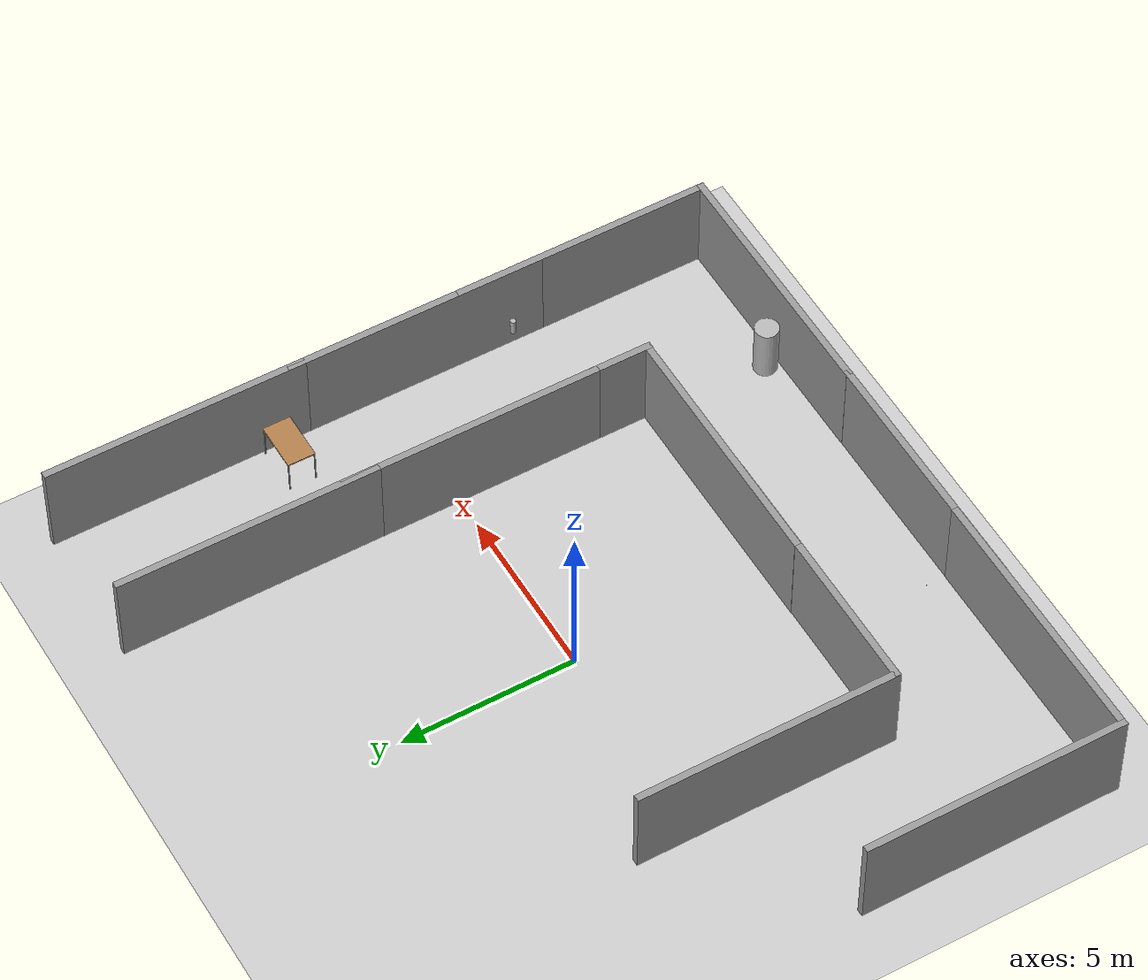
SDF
<sdf version="1.6">
 <world name="default">
  <light name="sun" type="directional">
   <pose>0 0 10 0 -0 0</pose>
   <diffuse>0.8 0.8 0.8 1</diffuse>
   <specular>0.1 0.1 0.1 1</specular>
   <attenuation>
    <range>1000</range>
    <constant>0.9</constant>
    <linear>0.01</linear>
    <quadratic>0.001</quadratic>
   </attenuation>
   <direction>-0.5 0.5 -1</direction>
  </light>
  <model name="ground_plane">
   <static>1</static>
   <link name="link">
    <collision name="collision">
     <geometry><plane><normal>0 0 1</normal><size>100 100</size></plane></geometry>
     <surface><friction><ode><mu>100</mu><mu2>50</mu2></ode></friction></surface>
    </collision>
    <visual name="visual">
     <cast_shadows>0</cast_shadows>
     <geometry><plane><normal>0 0 1</normal><size>100 100</size></plane></geometry>
     <material>
      <script><uri>file://media/materials/scripts/gazebo.material</uri><name>Gazebo/Grey</name></script>
     </material>
    </visual>
   </link>
  </model>
  <gravity>0 0 -9.8</gravity>
  <magnetic_field>6e-06 2.3e-05 -4.2e-05</magnetic_field>
  <atmosphere type="adiabatic"/>
  <physics name="default_physics" default="0" type="ode">
   <max_step_size>0.001</max_step_size>
   <real_time_factor>1</real_time_factor>
   <real_time_update_rate>1000</real_time_update_rate>
  </physics>
  <scene><ambient>0.4 0.4 0.4 1</ambient><background>0.7 0.7 0.7 1</background><shadows>1</shadows></scene>
  <spherical_coordinates>
   <surface_model>EARTH_WGS84</surface_model>
   <latitude_deg>0</latitude_deg>
   <longitude_deg>0</longitude_deg>
   <elevation>0</elevation>
   <heading_deg>0</heading_deg>
  </spherical_coordinates>
  <model name="grey_wall">
   <static>1</static>
   <link name="link">
    <pose>0 0 1.4 0 -0 0</pose>
    <collision name="collision"><geometry><box><size>7.5 0.2 2.8</size></box></geometry></collision>
    <visual name="visual">
     <cast_shadows>0</cast_shadows>
     <geometry><box><size>7.5 0.2 2.8</size></box></geometry>
     <material>
      <script>
       <uri>model://grey_wall/materials/scripts</uri>
       <uri>model://grey_wall/materials/textures</uri>
       <name>vrc/grey_wall</name>
      </script>
     </material>
    </visual>
   </link>
   <pose>10 6 0 0 0 -1.5708</pose>
  </model>
  <model name="grey_wall_clone">
   <static>1</static>
   <link name="link">
    <pose>0 0 1.4 0 -0 0</pose>
    <collision name="collision"><geometry><box><size>7.5 0.2 2.8</size></box></geometry></collision>
    <visual name="visual">
     <cast_shadows>0</cast_shadows>
     <geometry><box><size>7.5 0.2 2.8</size></box></geometry>
     <material>
      <script>
       <uri>model://grey_wall/materials/scripts</uri>
       <uri>model://grey_wall/materials/textures</uri>
       <name>vrc/grey_wall</name>
      </script>
     </material>
    </visual>
   </link>
   <pose>10 -1 0 0 0 -1.5708</pose>
  </model>
  <model name="grey_wall_clone_0">
   <static>1</static>
   <link name="link">
    <pose>0 0 1.4 0 -0 0</pose>
    <collision name="collision"><geometry><box><size>7.5 0.2 2.8</size></box></geometry></collision>
    <visual name="visual">
     <cast_shadows>0</cast_shadows>
     <geometry><box><size>7.5 0.2 2.8</size></box></geometry>
     <material>
      <script>
       <uri>model://grey_wall/materials/scripts</uri>
       <uri>model://grey_wall/materials/textures</uri>
       <name>vrc/grey_wall</name>
      </script>
     </material>
    </visual>
   </link>
   <pose>10 -6 0 0 0 -1.5708</pose>
  </model>
  <model name="grey_wall_clone_0_clone">
   <static>1</static>
   <link name="link">
    <pose>0 0 1.4 0 -0 0</pose>
    <collision name="collision"><geometry><box><size>7.5 0.2 2.8</size></box></geometry></collision>
    <visual name="visual">
     <cast_shadows>0</cast_shadows>
     <geometry><box><size>7.5 0.2 2.8</size></box></geometry>
     <material>
      <script>
       <uri>model://grey_wall/materials/scripts</uri>
       <uri>model://grey_wall/materials/textures</uri>
       <name>vrc/grey_wall</name>
      </script>
     </material>
    </visual>
   </link>
   <pose>6.3384 -9.65867 0 0 -0 3.14159</pose>
  </model>
  <model name="grey_wall_clone_0_clone_0">
   <static>1</static>
   <link name="link">
    <pose>0 0 1.4 0 -0 0</pose>
    <collision name="collision"><geometry><box><size>7.5 0.2 2.8</size></box></geometry></collision>
    <visual name="visual">
     <cast_shadows>0</cast_shadows>
     <geometry><box><size>7.5 0.2 2.8</size></box></geometry>
     <material>
      <script>
       <uri>model://grey_wall/materials/scripts</uri>
       <uri>model://grey_wall/materials/textures</uri>
       <name>vrc/grey_wall</name>
      </script>
     </material>
    </visual>
   </link>
   <pose>-0.997012 -9.66321 0 0 -0 3.14159</pose>
  </model>
  <model name="grey_wall_clone_0_clone_1">
   <static>1</static>
   <link name="link">
    <pose>0 0 1.4 0 -0 0</pose>
    <collision name="collision"><geometry><box><size>7.5 0.2 2.8</size></box></geometry></collision>
    <visual name="visual">
     <cast_shadows>0</cast_shadows>
     <geometry><box><size>7.5 0.2 2.8</size></box></geometry>
     <material>
      <script>
       <uri>model://grey_wall/materials/scripts</uri>
       <uri>model://grey_wall/materials/textures</uri>
       <name>vrc/grey_wall</name>
      </script>
     </material>
    </visual>
   </link>
   <pose>-6.16727 -9.65455 0 0 -0 3.14159</pose>
  </model>
  <model name="grey_wall_clone_0_clone_1_clone">
   <static>1</static>
   <link name="link">
    <pose>0 0 1.4 0 -0 0</pose>
    <collision name="collision"><geometry><box><size>7.5 0.2 2.8</size></box></geometry></collision>
    <visual name="visual">
     <cast_shadows>0</cast_shadows>
     <geometry><box><size>7.5 0.2 2.8</size></box></geometry>
     <material>
      <script>
       <uri>model://grey_wall/materials/scripts</uri>
       <uri>model://grey_wall/materials/textures</uri>
       <name>vrc/grey_wall</name>
      </script>
     </material>
    </visual>
   </link>
   <pose>-10 -6 0 0 -0 1.57079</pose>
  </model>
  <model name="grey_wall_clone_1">
   <static>1</static>
   <link name="link">
    <pose>0 0 1.4 0 -0 0</pose>
    <collision name="collision"><geometry><box><size>7.5 0.2 2.8</size></box></geometry></collision>
    <visual name="visual">
     <cast_shadows>0</cast_shadows>
     <geometry><box><size>7.5 0.2 2.8</size></box></geometry>
     <material>
      <script>
       <uri>model://grey_wall/materials/scripts</uri>
       <uri>model://grey_wall/materials/textures</uri>
       <name>vrc/grey_wall</name>
      </script>
     </material>
    </visual>
   </link>
   <pose>6 6 0 0 0 -1.5708</pose>
  </model>
  <model name="grey_wall_clone_2">
   <static>1</static>
   <link name="link">
    <pose>0 0 1.4 0 -0 0</pose>
    <collision name="collision"><geometry><box><size>7.5 0.2 2.8</size></box></geometry></collision>
    <visual name="visual">
     <cast_shadows>0</cast_shadows>
     <geometry><box><size>7.5 0.2 2.8</size></box></geometry>
     <material>
      <script>
       <uri>model://grey_wall/materials/scripts</uri>
       <uri>model://grey_wall/materials/textures</uri>
       <name>vrc/grey_wall</name>
      </script>
     </material>
    </visual>
   </link>
   <pose>6 -0.423875 0 0 0 -1.5708</pose>
  </model>
  <model name="grey_wall_clone_3">
   <static>1</static>
   <link name="link">
    <pose>0 0 1.4 0 -0 0</pose>
    <collision name="collision"><geometry><box><size>7.5 0.2 2.8</size></box></geometry></collision>
    <visual name="visual">
     <cast_shadows>0</cast_shadows>
     <geometry><box><size>7.5 0.2 2.8</size></box></geometry>
     <material>
      <script>
       <uri>model://grey_wall/materials/scripts</uri>
       <uri>model://grey_wall/materials/textures</uri>
       <name>vrc/grey_wall</name>
      </script>
     </material>
    </visual>
   </link>
   <pose>6 -2 0 0 0 -1.5708</pose>
  </model>
  <model name="grey_wall_clone_0_clone_clone">
   <static>1</static>
   <link name="link">
    <pose>0 0 1.4 0 -0 0</pose>
    <collision name="collision"><geometry><box><size>7.5 0.2 2.8</size></box></geometry></collision>
    <visual name="visual">
     <cast_shadows>0</cast_shadows>
     <geometry><box><size>7.5 0.2 2.8</size></box></geometry>
     <material>
      <script>
       <uri>model://grey_wall/materials/scripts</uri>
       <uri>model://grey_wall/materials/textures</uri>
       <name>vrc/grey_wall</name>
      </script>
     </material>
    </visual>
   </link>
   <pose>2.32856 -5.6384 0 0 -0 3.14159</pose>
  </model>
  <model name="grey_wall_clone_0_clone_clone_clone">
   <static>1</static>
   <link name="link">
    <pose>0 0 1.4 0 -0 0</pose>
    <collision name="collision"><geometry><box><size>7.5 0.2 2.8</size></box></geometry></collision>
    <visual name="visual">
     <cast_shadows>0</cast_shadows>
     <geometry><box><size>7.5 0.2 2.8</size></box></geometry>
     <material>
      <script>
       <uri>model://grey_wall/materials/scripts</uri>
       <uri>model://grey_wall/materials/textures</uri>
       <name>vrc/grey_wall</name>
      </script>
     </material>
    </visual>
   </link>
   <pose>-2.32832 -5.64757 0 0 -0 3.14159</pose>
  </model>
  <model name="grey_wall_clone_0_clone_1_clone_clone">
   <static>1</static>
   <link name="link">
    <pose>0 0 1.4 0 -0 0</pose>
    <collision name="collision"><geometry><box><size>7.5 0.2 2.8</size></box></geometry></collision>
    <visual name="visual">
     <cast_shadows>0</cast_shadows>
     <geometry><box><size>7.5 0.2 2.8</size></box></geometry>
     <material>
      <script>
       <uri>model://grey_wall/materials/scripts</uri>
       <uri>model://grey_wall/materials/textures</uri>
       <name>vrc/grey_wall</name>
      </script>
     </material>
    </visual>
   </link>
   <pose>-6 -2 0 0 -0 1.57079</pose>
  </model>
  <model name="table">
   <static>0</static>
   <link name="link">
    <collision name="surface">
     <pose>0 0 1 0 -0 0</pose>
     <geometry><box><size>1.5 0.8 0.03</size></box></geometry>
     <surface><friction><ode><mu>0.6</mu><mu2>0.6</mu2></ode></friction></surface>
    </collision>
    <visual name="visual1">
     <pose>0 0 1 0 -0 0</pose>
     <geometry><box><size>1.4 0.8 0.04</size></box></geometry>
     <material>
      <script><uri>file://media/materials/scripts/gazebo.material</uri><name>Gazebo/Wood</name></script>
     </material>
    </visual>
    <collision name="front_left_leg">
     <pose>0.68 0.38 0.5 0 -0 0</pose>
     <geometry><cylinder><radius>0.02</radius><length>1</length></cylinder></geometry>
    </collision>
    <visual name="front_left_leg">
     <pose>0.68 0.38 0.5 0 -0 0</pose>
     <geometry><cylinder><radius>0.02</radius><length>1</length></cylinder></geometry>
     <material>
      <script><uri>file://media/materials/scripts/gazebo.material</uri><name>Gazebo/Grey</name></script>
     </material>
    </visual>
    <collision name="front_right_leg">
     <pose>0.68 -0.38 0.5 0 -0 0</pose>
     <geometry><cylinder><radius>0.02</radius><length>1</length></cylinder></geometry>
    </collision>
    <visual name="front_right_leg">
     <pose>0.68 -0.38 0.5 0 -0 0</pose>
     <geometry><cylinder><radius>0.02</radius><length>1</length></cylinder></geometry>
     <material>
      <script><uri>file://media/materials/scripts/gazebo.material</uri><name>Gazebo/Grey</name></script>
     </material>
    </visual>
    <collision name="back_right_leg">
     <pose>-0.68 -0.38 0.5 0 -0 0</pose>
     <geometry><cylinder><radius>0.02</radius><length>1</length></cylinder></geometry>
    </collision>
    <visual name="back_right_leg">
     <pose>-0.68 -0.38 0.5 0 -0 0</pose>
     <geometry><cylinder><radius>0.02</radius><length>1</length></cylinder></geometry>
     <material>
      <script><uri>file://media/materials/scripts/gazebo.material</uri><name>Gazebo/Grey</name></script>
     </material>
    </visual>
    <collision name="back_left_leg">
     <pose>-0.68 0.38 0.5 0 -0 0</pose>
     <geometry><cylinder><radius>0.02</radius><length>1</length></cylinder></geometry>
    </collision>
    <visual name="back_left_leg">
     <pose>-0.68 0.38 0.5 0 -0 0</pose>
     <geometry><cylinder><radius>0.02</radius><length>1</length></cylinder></geometry>
     <material>
      <script><uri>file://media/materials/scripts/gazebo.material</uri><name>Gazebo/Grey</name></script>
     </material>
    </visual>
    <inertial>
     <inertia><ixx>1</ixx><ixy>0</ixy><ixz>0</ixz><iyy>1</iyy><iyz>0</iyz><izz>1</izz></inertia>
     <mass>1</mass>
    </inertial>
   </link>
   <pose>9.14997 3.25175 -0.006532 -3.7e-05 -7.7e-05 3.3e-05</pose>
  </model>
  <model name="table_0">
   <static>1</static>
   <link name="link">
    <collision name="surface">
     <pose>0 0 0.8 0 -0 0</pose>
     <geometry><box><size>1 0.8 0.03</size></box></geometry>
    </collision>
    <visual name="visual1">
     <pose>0 0 0.8 0 -0 0</pose>
     <geometry><box><size>1 0.8 0.03</size></box></geometry>
     <material>
      <script><uri>file://media/materials/scripts/gazebo.material</uri><name>Gazebo/Wood</name></script>
     </material>
    </visual>
    <collision name="front_left_leg">
     <pose>0.48 0.38 0.4 0 -0 0</pose>
     <geometry><cylinder><radius>0.02</radius><length>0.8</length></cylinder></geometry>
    </collision>
    <visual name="front_left_leg">
     <pose>0.48 0.38 0.4 0 -0 0</pose>
     <geometry><cylinder><radius>0.02</radius><length>0.8</length></cylinder></geometry>
     <material>
      <script><uri>file://media/materials/scripts/gazebo.material</uri><name>Gazebo/Grey</name></script>
     </material>
    </visual>
    <collision name="front_right_leg">
     <pose>0.48 -0.38 0.4 0 -0 0</pose>
     <geometry><cylinder><radius>0.02</radius><length>0.8</length></cylinder></geometry>
    </collision>
    <visual name="front_right_leg">
     <pose>0.48 -0.38 0.4 0 -0 0</pose>
     <geometry><cylinder><radius>0.02</radius><length>0.8</length></cylinder></geometry>
     <material>
      <script><uri>file://media/materials/scripts/gazebo.material</uri><name>Gazebo/Grey</name></script>
     </material>
    </visual>
    <collision name="back_right_leg">
     <pose>-0.48 -0.38 0.4 0 -0 0</pose>
     <geometry><cylinder><radius>0.02</radius><length>0.8</length></cylinder></geometry>
    </collision>
    <visual name="back_right_leg">
     <pose>-0.48 -0.38 0.4 0 -0 0</pose>
     <geometry><cylinder><radius>0.02</radius><length>0.8</length></cylinder></geometry>
     <material>
      <script><uri>file://media/materials/scripts/gazebo.material</uri><name>Gazebo/Grey</name></script>
     </material>
    </visual>
    <collision name="back_left_leg">
     <pose>-0.48 0.38 0.4 0 -0 0</pose>
     <geometry><cylinder><radius>0.02</radius><length>0.8</length></cylinder></geometry>
    </collision>
    <visual name="back_left_leg">
     <pose>-0.48 0.38 0.4 0 -0 0</pose>
     <geometry><cylinder><radius>0.02</radius><length>0.8</length></cylinder></geometry>
     <material>
      <script><uri>file://media/materials/scripts/gazebo.material</uri><name>Gazebo/Grey</name></script>
     </material>
    </visual>
    <velocity_decay><linear>0</linear><angular>0</angular></velocity_decay>
   </link>
   <pose>6.6081 -0.07017 0 0 -0 0</pose>
  </model>
  <model name="coke_can_slim">
   <static>0</static>
   <link name="link">
    <inertial>
     <mass>0.15</mass>
     <inertia><ixx>2079.98</ixx><ixy>0</ixy><ixz>0</ixz><iyy>2079.98</iyy><iyz>0</iyz><izz>419.21</izz></inertia>
    </inertial>
    <collision name="collision">
     <geometry><cylinder><radius>0.00401491</radius><length>0.0175552</length></cylinder></geometry>
    </collision>
    <visual name="visual">
     <geometry><cylinder><radius>0.00401491</radius><length>0.0175552</length></cylinder></geometry>
     <material>
      <script>
       <uri>model://coke_can_slim/material/scripts</uri>
       <uri>model://coke_can_slim/material/textures</uri>
       <name>Custom/coke_can_slim</name>
      </script>
     </material>
    </visual>
    <velocity_decay><linear>0</linear><angular>0</angular></velocity_decay>
   </link>
   <pose>9.1445 3.26296 1.2277 -0.000131 -9.6e-05 -0.569359</pose>
  </model>
  <model name="coke_can_slim_clone">
   <static>0</static>
   <link name="link">
    <inertial>
     <mass>0.15</mass>
     <inertia><ixx>2079.98</ixx><ixy>0</ixy><ixz>0</ixz><iyy>2079.98</iyy><iyz>0</iyz><izz>419.21</izz></inertia>
    </inertial>
    <collision name="collision">
     <geometry><cylinder><radius>0.0779399</radius><length>0.438464</length></cylinder></geometry>
    </collision>
    <visual name="visual">
     <geometry><cylinder><radius>0.0779399</radius><length>0.438464</length></cylinder></geometry>
     <material>
      <script>
       <uri>model://coke_can_slim/material/scripts</uri>
       <uri>model://coke_can_slim/material/textures</uri>
       <name>Custom/coke_can_slim</name>
      </script>
     </material>
    </visual>
    <velocity_decay><linear>0</linear><angular>0</angular></velocity_decay>
   </link>
   <pose>6.61286 0.046072 1.03424 -0.000131 -2.9e-05 -0.569345</pose>
  </model>
  <model name="coke_can_slim_clone_0">
   <static>0</static>
   <link name="link">
    <inertial>
     <mass>0.15</mass>
     <inertia><ixx>2079.98</ixx><ixy>0</ixy><ixz>0</ixz><iyy>2079.98</iyy><iyz>0</iyz><izz>419.21</izz></inertia>
    </inertial>
    <collision name="collision">
     <geometry><cylinder><radius>0.0779399</radius><length>0.438464</length></cylinder></geometry>
    </collision>
    <visual name="visual">
     <geometry><cylinder><radius>0.0779399</radius><length>0.438464</length></cylinder></geometry>
     <material>
      <script>
       <uri>model://coke_can_slim/material/scripts</uri>
       <uri>model://coke_can_slim/material/textures</uri>
       <name>Custom/coke_can_slim</name>
      </script>
     </material>
    </visual>
    <velocity_decay><linear>0</linear><angular>0</angular></velocity_decay>
   </link>
   <pose>9.70529 -3.73189 0.879231 8.7e-05 -7.1e-05 -0.569345</pose>
  </model>
  <model name="coke_can_slim_clone_1">
   <static>0</static>
   <link name="link">
    <inertial>
     <mass>0.15</mass>
     <inertia><ixx>2079.98</ixx><ixy>0</ixy><ixz>0</ixz><iyy>2079.98</iyy><iyz>0</iyz><izz>419.21</izz></inertia>
    </inertial>
    <collision name="collision">
     <geometry><cylinder><radius>0.0041717</radius><length>0.0335757</length></cylinder></geometry>
    </collision>
    <visual name="visual">
     <geometry><cylinder><radius>0.0041717</radius><length>0.0335757</length></cylinder></geometry>
     <material>
      <script>
       <uri>model://coke_can_slim/material/scripts</uri>
       <uri>model://coke_can_slim/material/textures</uri>
       <name>Custom/coke_can_slim</name>
      </script>
     </material>
    </visual>
    <velocity_decay><linear>0</linear><angular>0</angular></velocity_decay>
   </link>
   <pose>-2.8882 -8.65184 0.792231 1e-06 5e-06 -2.11414</pose>
  </model>
  <model name="coke_can_slim_clone_1_clone">
   <static>0</static>
   <link name="link">
    <inertial>
     <mass>0.15</mass>
     <inertia><ixx>2079.98</ixx><ixy>0</ixy><ixz>0</ixz><iyy>2079.98</iyy><iyz>0</iyz><izz>419.21</izz></inertia>
    </inertial>
    <collision name="collision">
     <geometry><cylinder><radius>0.336887</radius><length>1.58448</length></cylinder></geometry>
    </collision>
    <visual name="visual">
     <geometry><cylinder><radius>0.336887</radius><length>1.58448</length></cylinder></geometry>
     <material>
      <script>
       <uri>model://coke_can_slim/material/scripts</uri>
       <uri>model://coke_can_slim/material/textures</uri>
       <name>Custom/coke_can_slim</name>
      </script>
     </material>
    </visual>
    <velocity_decay><linear>0</linear><angular>0</angular></velocity_decay>
   </link>
   <pose>5.81278 -9.18221 0.79224 -0 1e-06 -2.11414</pose>
  </model>
  <light name="user_directional_light_0" type="directional">
   <pose>0.04361 0.231359 1 0 -0 0</pose>
   <diffuse>0.5 0.5 0.5 1</diffuse>
   <specular>0.1 0.1 0.1 1</specular>
   <direction>0.1 0.1 -0.9</direction>
   <attenuation>
    <range>20</range>
    <constant>0.5</constant>
    <linear>0.01</linear>
    <quadratic>0.001</quadratic>
   </attenuation>
  </light>
 </world>
</sdf>
